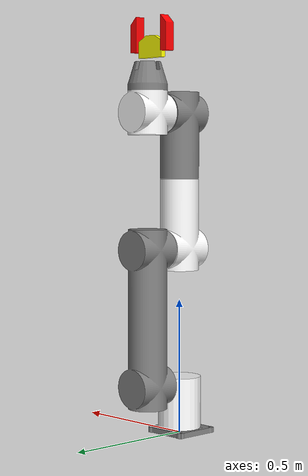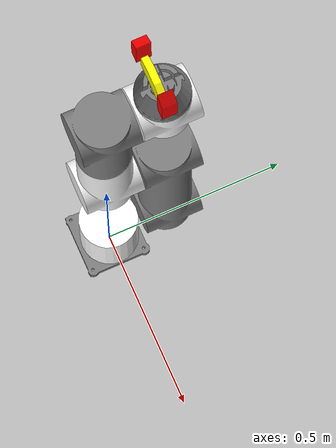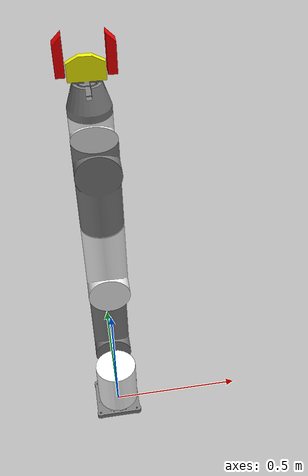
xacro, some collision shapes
<?xml version="1.0"?>
<robot xmlns:xacro="http://www.ros.org/wiki/xacro" name="armA" >

    <xacro:arg name="color"   default="blue"/>
    <xacro:arg name="gripper" default="none"/>
    <xacro:arg name="namespace" default=""/>

    <xacro:include filename="$(find arm_02)/description/xacro/armA.xacro" />

    <xacro:armA namespace="$(arg namespace)"/>

    <!-- World fixed joint-->
    <link name="world" />
    <joint name="world_fixed" type="fixed">
        <origin xyz="0 0 0" rpy="0 0 0"/>
        <parent link="world"/>
        <child link="base_0"/>
    </joint>

    <xacro:include filename="$(find arm_02)/description/xacro/gripA.xacro" />

    <joint name="gripper_fixed" type="fixed">
        <origin xyz="0 0 0.16" rpy="0 0 0"/>
        <!-- origin xyz="0 0 0.5" rpy="0 0 0"/ -->
        <parent link="link6"/>
        <child link="gripper_link_base"/>
    </joint>

</robot>

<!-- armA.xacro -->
<robot name="armA" xmlns:xacro="http://www.ros.org/wiki/xacro">

    <xacro:include filename="$(find arm_02)/description/xacro/armA.gazebo_config_control.xacro" />
    <xacro:include filename="$(find arm_02)/description/xacro/armA.transmission.xacro" />
    <xacro:include filename="$(find arm_02)/description/xacro/armA.internal_config.xacro" />
    <xacro:include filename="$(find arm_02)/description/xacro/armA.bumper_config.xacro" />

    <xacro:macro name="armA" params="namespace">

        <!-- Base -->
        <link name="base_0">
            <inertial>
                <mass value="3.635"/>
                <origin xyz="4e-06   -0.001     0.082"/>
                <inertia ixx="0.02216" ixy="5.8e-06" ixz="6.2e-06" iyy="0.02"
                    iyz="-5.3e-05"
                    izz="0.02"/>
            </inertial>
            <visual>
                <origin rpy="0 0 0" xyz="0 0 0" />
                <geometry>
                    <mesh filename="file:///$(find arm_02)/description/meshes/armA/armA_0.stl"
                        scale="0.004 0.004 0.004" />
                </geometry>
                <material name="gray">
                    <color rgba="0.5 0.5 0.5 1"/>
                </material>
            </visual>
            <collision>
                <geometry>
                    <mesh filename="file:///$(find arm_02)/description/meshes/armA/armA_0.stl"
                        scale="0.004 0.004 0.004" />
                </geometry>
              </collision>
        </link>

        <!-- joint 1 -->
        <joint name="joint1" type="revolute">
            <parent link="base_0" />
            <child link="link1" />
            <origin rpy="0 0 0" xyz="0 0 0.114" />
            <axis xyz="0 0 1" />
            <limit effort="411" lower="-6.2832" upper="6.2832" velocity="3.1416"/>
            <dynamics damping="60.0" friction="4.0" />
        </joint>

        <!-- Link 1 -->
        <link name="link1">
            <inertial>
                <mass value="7.9"/>
                <origin xyz="4.4e-05    0.029982    -0.01112"/>
                <inertia ixx="0.046" ixy="1.28e-05" ixz="-3.6e-05" iyy="0.03"
                    iyz="-0.003"
                    izz="0.04"/>
            </inertial>
            <collision>
                <geometry>
                    <cylinder radius="0.08" length="0.2"/>
                </geometry>
            </collision>
            <visual>
                <origin rpy="0 0 0" xyz="0 0 0" />
                <geometry>
                    <mesh filename="file:///$(find arm_02)/description/meshes/armA/armA_1.stl"
                        scale="0.004 0.004 0.004" />
                </geometry>
                <material name="white">
                    <color rgba="1 1 1 1"/>
                </material>
            </visual>
        </link>

        <!-- joint2 -->
        <!-- origin rpy="0 -1.571 -1.571" xyz="0 0.040 0" / -->
        <joint name="joint2" type="revolute">
            <parent link="link1" />
            <child link="link2" />
            <origin rpy="0 0 0" xyz="0 0.082 0.080" />
            <axis xyz="0 1 0" />
            <limit effort="411" lower="-6.2832" upper="6.2832" velocity="3.1416"/>
            <dynamics damping="50.0" friction="3.0" />
        </joint>

        <!-- Link 2 -->
        <link name="link2">
            <inertial>
                <mass value="10.985"/>
                <origin xyz="0.2    0.0014     0.13"/>
                <inertia ixx="0.04" ixy="-0.005" ixz="-0.01" iyy="0.7" iyz="-2.8e-05"
                    izz="0.67"/>
            </inertial>
            <collision>
                <origin rpy="0 -1.571 0" xyz="0.3 0 0.1525" />
                <geometry>
                    <cylinder radius="0.08" length="0.6"/>
                </geometry>
            </collision>
            <visual>
                <origin rpy="0 0 0" xyz="0 0.082 -0.082" />
                <geometry>
                    <mesh filename="file:///$(find arm_02)/description/meshes/armA/armA_2.stl"
                        scale="0.004 0.004 0.004" />
                </geometry>
                <material name="gray">
                    <color rgba="0.5 0.5 0.5 1"/>
                </material>
            </visual>
        </link>

        <joint name="joint3" type="revolute">
            <parent link="link2" />
            <child link="link3" />
            <origin rpy="0 0 0" xyz="0 -0.082 0.500" />
            <axis xyz="0 1 0" />
            <limit effort="194" lower="-2.7925" upper="2.7925" velocity="3.1416"/>
            <dynamics damping="40.0" friction="2.0"/>
        </joint>

        <!-- cylinder radius="0.08" length="0.2"/ -->

        <link name="link3">
            <inertial>
                <mass value="2.881"/>
                <origin xyz="8.5e-05   -0.0025    0.03"/>
                <inertia ixx="0.013" ixy="-5.4e-06" ixz="1.64e-05" iyy="0.01"
                    iyz="-0.0002"
                    izz="0.008"/>
            </inertial>
            <collision>
                <geometry>
                    <mesh filename="file:///$(find arm_02)/description/meshes/armA/armA_3.stl"
                        scale="0.004 0.004 0.004" />
                </geometry>
            </collision>
            <visual>
                <origin rpy="0 0 0" xyz="0 0 -0.080" />
                <geometry>
                    <mesh filename="file:///$(find arm_02)/description/meshes/armA/armA_3.stl"
                        scale="0.004 0.004 0.004" />
                </geometry>
                <material name="white">
                    <color rgba="1 1 1 1"/>
                </material>
            </visual>
        </link>

        <!-- joint4 -->
        <joint name="joint4" type="revolute">
            <parent link="link3" />
            <child link="link4" />
            <origin rpy="0 0 0" xyz="0 0 0.262" />
            <axis xyz="0 0 1" />
            <limit effort="50" lower="-6.2832" upper="6.2832" velocity="6.2832"/>
            <dynamics damping="20.0" friction="1.0" />
        </joint>

        <link name="link4">
            <inertial>
                <mass value="3.273"/>
                <origin xyz="-9.6e-05    0.085    -0.14"/>
                <inertia ixx="0.12" ixy="2.4e-05" ixz="2.5e-05" iyy="0.11" iyz="-0.028"
                    izz="0.017"/>
            </inertial>
            <collision>
                <origin rpy="-0.46 0 0" xyz="0 0.075 -0.2" />
                <geometry>
                    <cylinder radius="0.05" length="0.4"/>
                </geometry>
            </collision>
            <visual>
                <origin rpy="0 0 0" xyz="0 0 0" />
                <geometry>
                    <mesh filename="file:///$(find arm_02)/description/meshes/armA/armA_4.stl"
                        scale="0.004 0.004 0.004" />
                </geometry>
                <material name="gray">
                    <color rgba="0.5 0.5 0.5 1"/>
                </material>
            </visual>
        </link>

        <!-- origin rpy="-1.571 0 0" xyz="0 0 0" / -->

        <joint name="joint5" type="revolute">
            <parent link="link4" />
            <child link="link5" />
            <origin rpy="0 0 0" xyz="0 0.082 0.24" />
            <axis xyz="0 1 0" />
            <limit effort="50" lower="-6.2832" upper="6.2832" velocity="6.2832"/>
            <dynamics damping="10.0" friction="1.0" />
        </joint>

        <link name="link5">
            <inertial>
                <mass value="2.141"/>
                <origin xyz="0.0001   -0.003     0.015"/>
                <inertia ixx="0.013" ixy="-4.7e-06" ixz="8.6e-06" iyy="0.007"
                    iyz="-6.0e-05"
                    izz="0.009"/>
            </inertial>
            <collision>
                <origin rpy="1.571 0 0" xyz="0 0 0" />
                <geometry>
                    <cylinder radius="0.06" length="0.15"/>
                </geometry>
            </collision>
            <visual>
                <origin rpy="0 0 0" xyz="0 0.082 -0.08" />
                <geometry>
                    <mesh filename="file:///$(find arm_02)/description/meshes/armA/armA_5.stl"
                        scale="0.004 0.004 0.004" />
                </geometry>
                <material name="white">
                    <color rgba="1 1 1 1"/>
                </material>
            </visual>
        </link>

        <joint name="joint6" type="revolute">
            <parent link="link5" />
            <child link="link6" />
            <origin rpy="0 0 0" xyz="0 0.082 0.08" />
            <axis xyz="0 0 1" />
            <limit effort="50" lower="-6.2832" upper="6.2832" velocity="6.2832"/>
            <dynamics damping="10.0" friction="1.0" />
        </joint>

        <link name="link6">
            <inertial>
                <mass value="0.784"/>
                <origin xyz="-1.9e-05      -6e-06    -0.05"/>
                <inertia ixx="0.0067" ixy="5.24e-06" ixz="2.5e-06" iyy="0.0048"
                    iyz="8.37e-06"
                    izz="0.006"/>
            </inertial>
            <visual>
                <origin rpy="0 0 0" xyz="0 0 0" />
                <geometry>
                    <mesh filename="file:///$(find arm_02)/description/meshes/armA/armA_6.stl"
                        scale="0.004 0.004 0.004" />
                </geometry>
                <material name="gray">
                    <color rgba="0.5 0.5 0.5 1"/>
                </material>
            </visual>
            <collision>
                <geometry>
                      <mesh filename="file:///$(find arm_02)/description/meshes/armA/armA_6.stl"
                        scale="0.004 0.004 0.004" />
                </geometry>
              </collision>
        </link>

        <!-- Gazebo Colors -->
        <gazebo reference="gripper_link_base">
            <material>Gazebo/Yellow</material>
        </gazebo>

        <gazebo reference="base_0">
            <material>Gazebo/Gray</material>
        </gazebo>
        <gazebo reference="link1">
            <material>Gazebo/White</material>
        </gazebo>
        <gazebo reference="link2">
            <material>Gazebo/Gray</material>
        </gazebo>
        <gazebo reference="link3">
            <material>Gazebo/White</material>
        </gazebo>
        <gazebo reference="link4">
            <material>Gazebo/Gray</material>
        </gazebo>
        <gazebo reference="link5">
            <material>Gazebo/White</material>
        </gazebo>
        <gazebo reference="link6">
            <material>Gazebo/Gray</material>
        </gazebo>

        <!-- the following lines instantiates all the info described in the files:
         macro.gazebo_config_control.xacro, transmissions,  internal_config, macro.bumper_config  by david-->
        <xacro:config_ctr_gazebo />
        <xacro:dsr_transmission />
        <xacro:dsr_config_coeff />
        <xacro:bumper_ctr_sensor />

    </xacro:macro>
</robot>

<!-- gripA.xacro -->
<robot xmlns:xacro="http://www.ros.org/wiki/xacro">

    <xacro:arg name="link1_x" default="0.038"/>
    <xacro:arg name="link1_y" default="0"/>
    <xacro:arg name="link1_z" default="0.038"/>
    <xacro:arg name="link1_joint_x" default="0.04"/>
    <xacro:arg name="link1_joint_z" default="0.008"/>

    <link name="gripper_link_base">
        <inertial>
            <mass value="3.635"/>
            <origin xyz="4e-06   -0.001     0.082"/>
            <inertia ixx="0.02216" ixy="5.8e-06" ixz="6.2e-06" iyy="0.02"
                iyz="-5.3e-05"
                izz="0.02"/>
        </inertial>
        <collision>
            <geometry>
                <cylinder radius="0.08" length="0.2"/>
            </geometry>
            </collision>
        <visual>
            <origin rpy="1.571 0 0" xyz="0 0 0" />
            <geometry>
                <mesh filename="file:///$(find arm_02)/description/meshes/gripA/gripA_0.stl"
                    scale="0.004 0.004 0.004" />
            </geometry>
            <material name="yellow">
                <color rgba="1 1 0 1"/>
            </material>
        </visual>
    </link>

    <link name="gripper_link_left_1">
        <inertial>
            <mass value="3.635"/>
            <origin xyz="4e-06   -0.001     0.082"/>
            <inertia ixx="0.02216" ixy="5.8e-06" ixz="6.2e-06" iyy="0.02"
                iyz="-5.3e-05"
                izz="0.02"/>
        </inertial>
        <collision>
            <geometry>
                <cylinder radius="0.08" length="0.2"/>
            </geometry>
            </collision>
        <visual>
            <origin rpy="1.571 0 0" xyz="-$(arg link1_x) $(arg link1_y) $(arg link1_z)" />
            <!-- origin rpy="1.571 0 0" xyz="-0.036 0 0.038" /-->
            <geometry>
                <mesh filename="file:///$(find arm_02)/description/meshes/gripA/gripA_L_1.stl"
                    scale="0.004 0.004 0.004" />
            </geometry>
            <material name="red">
                <color rgba="1 0 0 1"/>
            </material>
        </visual>

    </link>

    <joint name="gripper_joint_left_1" type="prismatic">
        <parent link="gripper_link_base" />
        <child link="gripper_link_left_1" />
        <origin rpy="0 0 0" xyz="-$(arg link1_joint_x) $(arg link1_y) $(arg link1_joint_z)" />
        <!-- origin rpy="0 0 0" xyz="-0.036 0 -0.04" / -->
        <axis xyz="1 0 0" />
        <limit effort="411" lower="-0.04" upper="0.06" velocity="0.05"/>
        <dynamics damping="60.0" friction="4.0" />
    </joint>

    <link name="gripper_link_right_1">
        <inertial>
            <mass value="3.635"/>
            <origin xyz="4e-06   -0.001     0.082"/>
            <inertia ixx="0.02216" ixy="5.8e-06" ixz="6.2e-06" iyy="0.02"
                iyz="-5.3e-05"
                izz="0.02"/>
        </inertial>
        <collision>
            <geometry>
                <cylinder radius="0.08" length="0.2"/>
            </geometry>
            </collision>
        <visual>
            <origin rpy="1.571 0 0" xyz="$(arg link1_x) $(arg link1_y) $(arg link1_z)" />
            <!-- origin rpy="1.571 0 0" xyz="-0.036 0 0.038" /-->
            <geometry>
                <mesh filename="file:///$(find arm_02)/description/meshes/gripA/gripA_R_1.stl"
                    scale="0.004 0.004 0.004" />
            </geometry>
            <material name="red">
                <color rgba="1 0 0 1"/>
            </material>
        </visual>

    </link>

    <joint name="gripper_joint_right_1" type="prismatic">
        <parent link="gripper_link_base" />
        <child link="gripper_link_right_1" />
        <origin rpy="0 0 0" xyz="$(arg link1_joint_x) $(arg link1_y) $(arg link1_joint_z)" />
        <!-- origin rpy="0 0 0" xyz="-0.036 0 -0.04" / -->
        <axis xyz="1 0 0" />
        <limit effort="411" lower="-0.06" upper="0.04" velocity="0.05"/>
        <dynamics damping="60.0" friction="4.0" />

        <!-- Mimic the movement of gripper_joint_left_1 -->
        <mimic joint="gripper_joint_left_1" multiplier="-1" offset="0" />

    </joint>

    <!-- Gazebo colors -->

    <gazebo reference="gripper_link_base">
        <material>Gazebo/Yellow</material>
    </gazebo>
    <gazebo reference="gripper_link_left_1">
        <material>Gazebo/Red</material>
    </gazebo>
    <gazebo reference="gripper_link_right_1">
        <material>Gazebo/Red</material>
    </gazebo>

</robot>
